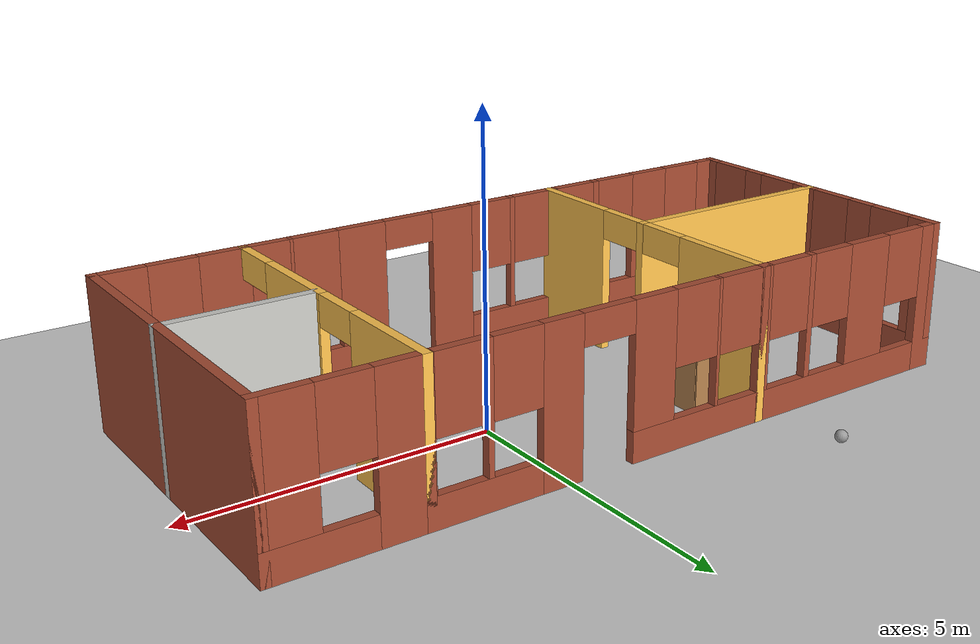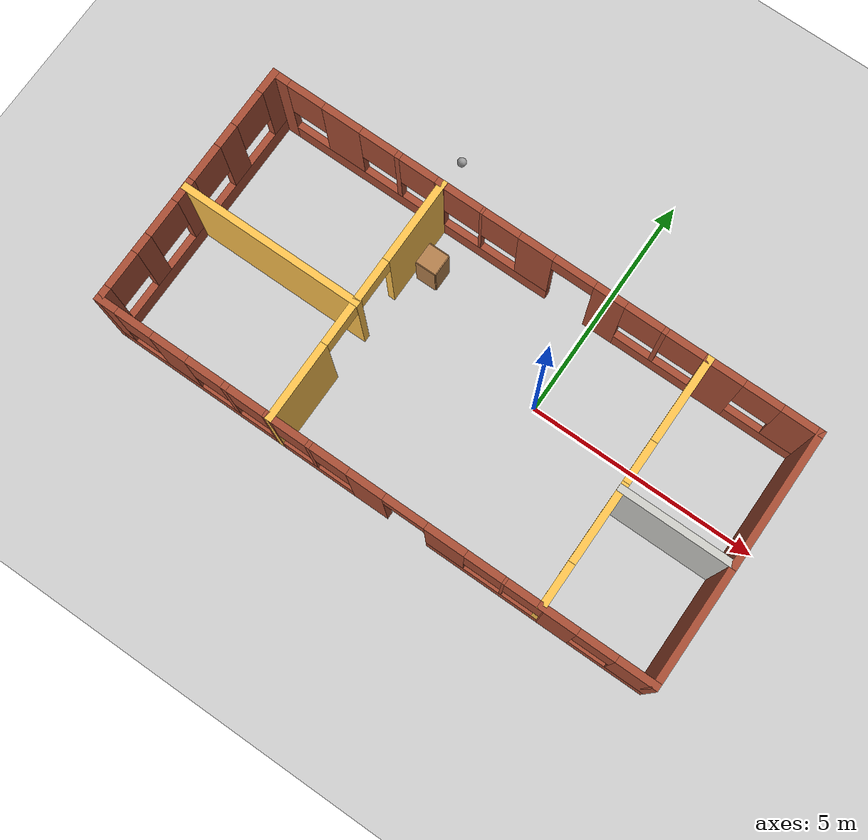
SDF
<sdf version="1.6">
 <world name="default">
  <model name="ground_plane">
   <static>1</static>
   <link name="link">
    <collision name="collision">
     <geometry><plane><normal>0 0 1</normal><size>100 100</size></plane></geometry>
     <surface>
      <contact><collide_bitmask>65535</collide_bitmask></contact>
      <friction><ode><mu>100</mu><mu2>50</mu2></ode></friction>
     </surface>
    </collision>
    <visual name="visual">
     <cast_shadows>0</cast_shadows>
     <geometry><plane><normal>0 0 1</normal><size>100 100</size></plane></geometry>
     <material>
      <script><uri>file://media/materials/scripts/gazebo.material</uri><name>Gazebo/Grey</name></script>
     </material>
    </visual>
   </link>
  </model>
  <model name="building">
   <pose>-1.405 -0.625 0 0 -0 0</pose>
   <link name="Wall_0">
    <pose>-2.175 0 0 0 -0 1.5708</pose>
    <visual name="Wall_0_Visual_0">
     <pose>-1.89234 0 1.25 0 -0 0</pose>
     <geometry><box><size>1.71533 0.15 2.5</size></box></geometry>
     <material>
      <script><uri>file://media/materials/scripts/gazebo.material</uri><name>Gazebo/Grey</name></script>
      <ambient>1 0.764706 0.305882 1</ambient>
     </material>
     <meta><layer>0</layer></meta>
    </visual>
    <collision name="Wall_0_Collision_0">
     <geometry><box><size>1.71533 0.15 2.5</size></box></geometry>
     <pose>-1.89234 0 1.25 0 -0 0</pose>
    </collision>
    <visual name="Wall_0_Visual_1">
     <pose>-0.075798 0 1.25 0 -0 0</pose>
     <geometry><box><size>0.117747 0.15 2.5</size></box></geometry>
     <material>
      <script><uri>file://media/materials/scripts/gazebo.material</uri><name>Gazebo/Grey</name></script>
      <ambient>1 0.764706 0.305882 1</ambient>
     </material>
     <meta><layer>0</layer></meta>
    </visual>
    <collision name="Wall_0_Collision_1">
     <geometry><box><size>0.117747 0.15 2.5</size></box></geometry>
     <pose>-0.075798 0 1.25 0 -0 0</pose>
    </collision>
    <visual name="Wall_0_Visual_2">
     <pose>1.81654 0 1.25 0 -0 0</pose>
     <geometry><box><size>1.86692 0.15 2.5</size></box></geometry>
     <material>
      <script><uri>file://media/materials/scripts/gazebo.material</uri><name>Gazebo/Grey</name></script>
      <ambient>1 0.764706 0.305882 1</ambient>
     </material>
     <meta><layer>0</layer></meta>
    </visual>
    <collision name="Wall_0_Collision_2">
     <geometry><box><size>1.86692 0.15 2.5</size></box></geometry>
     <pose>1.81654 0 1.25 0 -0 0</pose>
    </collision>
    <visual name="Wall_0_Visual_3">
     <pose>-0.584671 0 2.25 0 -0 0</pose>
     <geometry><box><size>0.9 0.15 0.5</size></box></geometry>
     <material>
      <script><uri>file://media/materials/scripts/gazebo.material</uri><name>Gazebo/Grey</name></script>
      <ambient>1 0.764706 0.305882 1</ambient>
     </material>
     <meta><layer>0</layer></meta>
    </visual>
    <collision name="Wall_0_Collision_3">
     <geometry><box><size>0.9 0.15 0.5</size></box></geometry>
     <pose>-0.584671 0 2.25 0 -0 0</pose>
    </collision>
    <visual name="Wall_0_Visual_4">
     <pose>0.433076 0 2.25 0 -0 0</pose>
     <geometry><box><size>0.9 0.15 0.5</size></box></geometry>
     <material>
      <script><uri>file://media/materials/scripts/gazebo.material</uri><name>Gazebo/Grey</name></script>
      <ambient>1 0.764706 0.305882 1</ambient>
     </material>
     <meta><layer>0</layer></meta>
    </visual>
    <collision name="Wall_0_Collision_4">
     <geometry><box><size>0.9 0.15 0.5</size></box></geometry>
     <pose>0.433076 0 2.25 0 -0 0</pose>
    </collision>
   </link>
   <link name="Wall_1">
    <pose>0.75 2.675 0 0 -0 0</pose>
    <visual name="Wall_1_Visual_0">
     <pose>-2.92093 0 1.25 0 -0 0</pose>
     <geometry><box><size>0.158131 0.15 2.5</size></box></geometry>
     <material>
      <script><uri>file://media/materials/scripts/gazebo.material</uri><name>Gazebo/Bricks</name></script>
      <ambient>1 1 1 1</ambient>
     </material>
     <meta><layer>0</layer></meta>
    </visual>
    <collision name="Wall_1_Collision_0">
     <geometry><box><size>0.158131 0.15 2.5</size></box></geometry>
     <pose>-2.92093 0 1.25 0 -0 0</pose>
    </collision>
    <visual name="Wall_1_Visual_1">
     <pose>0.810048 0 1.25 0 -0 0</pose>
     <geometry><box><size>0.671635 0.15 2.5</size></box></geometry>
     <material>
      <script><uri>file://media/materials/scripts/gazebo.material</uri><name>Gazebo/Bricks</name></script>
      <ambient>1 1 1 1</ambient>
     </material>
     <meta><layer>0</layer></meta>
    </visual>
    <collision name="Wall_1_Collision_1">
     <geometry><box><size>0.671635 0.15 2.5</size></box></geometry>
     <pose>0.810048 0 1.25 0 -0 0</pose>
    </collision>
    <visual name="Wall_1_Visual_2">
     <pose>-1.63382 0 0.25 0 -0 0</pose>
     <geometry><box><size>2.4161 0.15 0.5</size></box></geometry>
     <material>
      <script><uri>file://media/materials/scripts/gazebo.material</uri><name>Gazebo/Bricks</name></script>
      <ambient>1 1 1 1</ambient>
     </material>
     <meta><layer>0</layer></meta>
    </visual>
    <collision name="Wall_1_Collision_2">
     <geometry><box><size>2.4161 0.15 0.5</size></box></geometry>
     <pose>-1.63382 0 0.25 0 -0 0</pose>
    </collision>
    <visual name="Wall_1_Visual_3">
     <pose>2.07293 0 0.25 0 -0 0</pose>
     <geometry><box><size>1.85413 0.15 0.5</size></box></geometry>
     <material>
      <script><uri>file://media/materials/scripts/gazebo.material</uri><name>Gazebo/Bricks</name></script>
      <ambient>1 1 1 1</ambient>
     </material>
     <meta><layer>0</layer></meta>
    </visual>
    <collision name="Wall_1_Collision_3">
     <geometry><box><size>1.85413 0.15 0.5</size></box></geometry>
     <pose>2.07293 0 0.25 0 -0 0</pose>
    </collision>
    <visual name="Wall_1_Visual_4">
     <pose>-2.01336 0 1.5 0 -0 0</pose>
     <geometry><box><size>0.057013 0.15 2</size></box></geometry>
     <material>
      <script><uri>file://media/materials/scripts/gazebo.material</uri><name>Gazebo/Bricks</name></script>
      <ambient>1 1 1 1</ambient>
     </material>
     <meta><layer>0</layer></meta>
    </visual>
    <collision name="Wall_1_Collision_4">
     <geometry><box><size>0.057013 0.15 2</size></box></geometry>
     <pose>-2.01336 0 1.5 0 -0 0</pose>
    </collision>
    <visual name="Wall_1_Visual_5">
     <pose>-0.805313 0 1.5 0 -0 0</pose>
     <geometry><box><size>0.759086 0.15 2</size></box></geometry>
     <material>
      <script><uri>file://media/materials/scripts/gazebo.material</uri><name>Gazebo/Bricks</name></script>
      <ambient>1 1 1 1</ambient>
     </material>
     <meta><layer>0</layer></meta>
    </visual>
    <collision name="Wall_1_Collision_5">
     <geometry><box><size>0.759086 0.15 2</size></box></geometry>
     <pose>-0.805313 0 1.5 0 -0 0</pose>
    </collision>
    <visual name="Wall_1_Visual_6">
     <pose>-0.805313 0 1.5 0 -0 0</pose>
     <geometry><box><size>0.759086 0.15 2</size></box></geometry>
     <material>
      <script><uri>file://media/materials/scripts/gazebo.material</uri><name>Gazebo/Bricks</name></script>
      <ambient>1 1 1 1</ambient>
     </material>
     <meta><layer>0</layer></meta>
    </visual>
    <collision name="Wall_1_Collision_6">
     <geometry><box><size>0.759086 0.15 2</size></box></geometry>
     <pose>-0.805313 0 1.5 0 -0 0</pose>
    </collision>
    <visual name="Wall_1_Visual_7">
     <pose>1.99186 0 1.5 0 -0 0</pose>
     <geometry><box><size>0.091993 0.15 2</size></box></geometry>
     <material>
      <script><uri>file://media/materials/scripts/gazebo.material</uri><name>Gazebo/Bricks</name></script>
      <ambient>1 1 1 1</ambient>
     </material>
     <meta><layer>0</layer></meta>
    </visual>
    <collision name="Wall_1_Collision_7">
     <geometry><box><size>0.091993 0.15 2</size></box></geometry>
     <pose>1.99186 0 1.5 0 -0 0</pose>
    </collision>
    <visual name="Wall_1_Visual_8">
     <pose>2.91893 0 1.5 0 -0 0</pose>
     <geometry><box><size>0.162141 0.15 2</size></box></geometry>
     <material>
      <script><uri>file://media/materials/scripts/gazebo.material</uri><name>Gazebo/Bricks</name></script>
      <ambient>1 1 1 1</ambient>
     </material>
     <meta><layer>0</layer></meta>
    </visual>
    <collision name="Wall_1_Collision_8">
     <geometry><box><size>0.162141 0.15 2</size></box></geometry>
     <pose>2.91893 0 1.5 0 -0 0</pose>
    </collision>
    <visual name="Wall_1_Visual_9">
     <pose>-2.44187 0 1.9 0 -0 0</pose>
     <geometry><box><size>0.8 0.15 1.2</size></box></geometry>
     <material>
      <script><uri>file://media/materials/scripts/gazebo.material</uri><name>Gazebo/Bricks</name></script>
      <ambient>1 1 1 1</ambient>
     </material>
     <meta><layer>0</layer></meta>
    </visual>
    <collision name="Wall_1_Collision_9">
     <geometry><box><size>0.8 0.15 1.2</size></box></geometry>
     <pose>-2.44187 0 1.9 0 -0 0</pose>
    </collision>
    <visual name="Wall_1_Visual_10">
     <pose>1.54587 0 1.9 0 -0 0</pose>
     <geometry><box><size>0.8 0.15 1.2</size></box></geometry>
     <material>
      <script><uri>file://media/materials/scripts/gazebo.material</uri><name>Gazebo/Bricks</name></script>
      <ambient>1 1 1 1</ambient>
     </material>
     <meta><layer>0</layer></meta>
    </visual>
    <collision name="Wall_1_Collision_10">
     <geometry><box><size>0.8 0.15 1.2</size></box></geometry>
     <pose>1.54587 0 1.9 0 -0 0</pose>
    </collision>
    <visual name="Wall_1_Visual_11">
     <pose>-1.58486 0 1.9 0 -0 0</pose>
     <geometry><box><size>0.8 0.15 1.2</size></box></geometry>
     <material>
      <script><uri>file://media/materials/scripts/gazebo.material</uri><name>Gazebo/Bricks</name></script>
      <ambient>1 1 1 1</ambient>
     </material>
     <meta><layer>0</layer></meta>
    </visual>
    <collision name="Wall_1_Collision_11">
     <geometry><box><size>0.8 0.15 1.2</size></box></geometry>
     <pose>-1.58486 0 1.9 0 -0 0</pose>
    </collision>
    <visual name="Wall_1_Visual_12">
     <pose>2.43786 0 1.9 0 -0 0</pose>
     <geometry><box><size>0.8 0.15 1.2</size></box></geometry>
     <material>
      <script><uri>file://media/materials/scripts/gazebo.material</uri><name>Gazebo/Bricks</name></script>
      <ambient>1 1 1 1</ambient>
     </material>
     <meta><layer>0</layer></meta>
    </visual>
    <collision name="Wall_1_Collision_12">
     <geometry><box><size>0.8 0.15 1.2</size></box></geometry>
     <pose>2.43786 0 1.9 0 -0 0</pose>
    </collision>
    <visual name="Wall_1_Visual_13">
     <pose>0.02423 0 2.25 0 -0 0</pose>
     <geometry><box><size>0.9 0.15 0.5</size></box></geometry>
     <material>
      <script><uri>file://media/materials/scripts/gazebo.material</uri><name>Gazebo/Bricks</name></script>
      <ambient>1 1 1 1</ambient>
     </material>
     <meta><layer>0</layer></meta>
    </visual>
    <collision name="Wall_1_Collision_13">
     <geometry><box><size>0.9 0.15 0.5</size></box></geometry>
     <pose>0.02423 0 2.25 0 -0 0</pose>
    </collision>
    <visual name="Wall_1_Visual_14">
     <pose>0.02423 0 2.25 0 -0 0</pose>
     <geometry><box><size>0.9 0.15 0.5</size></box></geometry>
     <material>
      <script><uri>file://media/materials/scripts/gazebo.material</uri><name>Gazebo/Bricks</name></script>
      <ambient>1 1 1 1</ambient>
     </material>
     <meta><layer>0</layer></meta>
    </visual>
    <collision name="Wall_1_Collision_14">
     <geometry><box><size>0.9 0.15 0.5</size></box></geometry>
     <pose>0.02423 0 2.25 0 -0 0</pose>
    </collision>
   </link>
   <link name="Wall_10">
    <collision name="Wall_10_Collision">
     <geometry><box><size>2.65 0.15 2.5</size></box></geometry>
     <pose>0 0 1.25 0 -0 0</pose>
    </collision>
    <visual name="Wall_10_Visual">
     <pose>0 0 1.25 0 -0 0</pose>
     <geometry><box><size>2.65 0.15 2.5</size></box></geometry>
     <material>
      <script><uri>file://media/materials/scripts/gazebo.material</uri><name>Gazebo/Bricks</name></script>
      <ambient>1 1 1 1</ambient>
     </material>
     <meta><layer>0</layer></meta>
    </visual>
    <pose>6.025 -1.425 0 0 -0 1.5708</pose>
   </link>
   <link name="Wall_12">
    <pose>-4.1 -2.675 0 0 -0 3.14159</pose>
    <visual name="Wall_12_Visual_0">
     <pose>-1.89685 0 1.25 0 -0 0</pose>
     <geometry><box><size>0.206292 0.15 2.5</size></box></geometry>
     <material>
      <script><uri>file://media/materials/scripts/gazebo.material</uri><name>Gazebo/Bricks</name></script>
      <ambient>1 1 1 1</ambient>
     </material>
     <meta><layer>0</layer></meta>
    </visual>
    <collision name="Wall_12_Collision_0">
     <geometry><box><size>0.206292 0.15 2.5</size></box></geometry>
     <pose>-1.89685 0 1.25 0 -0 0</pose>
    </collision>
    <visual name="Wall_12_Visual_1">
     <pose>0.103146 0 0.25 0 -0 0</pose>
     <geometry><box><size>3.79371 0.15 0.5</size></box></geometry>
     <material>
      <script><uri>file://media/materials/scripts/gazebo.material</uri><name>Gazebo/Bricks</name></script>
      <ambient>1 1 1 1</ambient>
     </material>
     <meta><layer>0</layer></meta>
    </visual>
    <collision name="Wall_12_Collision_1">
     <geometry><box><size>3.79371 0.15 0.5</size></box></geometry>
     <pose>0.103146 0 0.25 0 -0 0</pose>
    </collision>
    <visual name="Wall_12_Visual_2">
     <pose>-0.930221 0 1.5 0 -0 0</pose>
     <geometry><box><size>0.126973 0.15 2</size></box></geometry>
     <material>
      <script><uri>file://media/materials/scripts/gazebo.material</uri><name>Gazebo/Bricks</name></script>
      <ambient>1 1 1 1</ambient>
     </material>
     <meta><layer>0</layer></meta>
    </visual>
    <collision name="Wall_12_Collision_2">
     <geometry><box><size>0.126973 0.15 2</size></box></geometry>
     <pose>-0.930221 0 1.5 0 -0 0</pose>
    </collision>
    <visual name="Wall_12_Visual_3">
     <pose>0.329063 0 1.5 0 -0 0</pose>
     <geometry><box><size>0.791596 0.15 2</size></box></geometry>
     <material>
      <script><uri>file://media/materials/scripts/gazebo.material</uri><name>Gazebo/Bricks</name></script>
      <ambient>1 1 1 1</ambient>
     </material>
     <meta><layer>0</layer></meta>
    </visual>
    <collision name="Wall_12_Collision_3">
     <geometry><box><size>0.791596 0.15 2</size></box></geometry>
     <pose>0.329063 0 1.5 0 -0 0</pose>
    </collision>
    <visual name="Wall_12_Visual_4">
     <pose>1.76243 0 1.5 0 -0 0</pose>
     <geometry><box><size>0.475139 0.15 2</size></box></geometry>
     <material>
      <script><uri>file://media/materials/scripts/gazebo.material</uri><name>Gazebo/Bricks</name></script>
      <ambient>1 1 1 1</ambient>
     </material>
     <meta><layer>0</layer></meta>
    </visual>
    <collision name="Wall_12_Collision_4">
     <geometry><box><size>0.475139 0.15 2</size></box></geometry>
     <pose>1.76243 0 1.5 0 -0 0</pose>
    </collision>
    <visual name="Wall_12_Visual_5">
     <pose>-1.39371 0 1.9 0 -0 0</pose>
     <geometry><box><size>0.8 0.15 1.2</size></box></geometry>
     <material>
      <script><uri>file://media/materials/scripts/gazebo.material</uri><name>Gazebo/Bricks</name></script>
      <ambient>1 1 1 1</ambient>
     </material>
     <meta><layer>0</layer></meta>
    </visual>
    <collision name="Wall_12_Collision_5">
     <geometry><box><size>0.8 0.15 1.2</size></box></geometry>
     <pose>-1.39371 0 1.9 0 -0 0</pose>
    </collision>
    <visual name="Wall_12_Visual_6">
     <pose>-0.466734 0 1.9 0 -0 0</pose>
     <geometry><box><size>0.8 0.15 1.2</size></box></geometry>
     <material>
      <script><uri>file://media/materials/scripts/gazebo.material</uri><name>Gazebo/Bricks</name></script>
      <ambient>1 1 1 1</ambient>
     </material>
     <meta><layer>0</layer></meta>
    </visual>
    <collision name="Wall_12_Collision_6">
     <geometry><box><size>0.8 0.15 1.2</size></box></geometry>
     <pose>-0.466734 0 1.9 0 -0 0</pose>
    </collision>
    <visual name="Wall_12_Visual_7">
     <pose>1.12486 0 1.9 0 -0 0</pose>
     <geometry><box><size>0.8 0.15 1.2</size></box></geometry>
     <material>
      <script><uri>file://media/materials/scripts/gazebo.material</uri><name>Gazebo/Bricks</name></script>
      <ambient>1 1 1 1</ambient>
     </material>
     <meta><layer>0</layer></meta>
    </visual>
    <collision name="Wall_12_Collision_7">
     <geometry><box><size>0.8 0.15 1.2</size></box></geometry>
     <pose>1.12486 0 1.9 0 -0 0</pose>
    </collision>
   </link>
   <link name="Wall_13">
    <pose>-6.025 0 0 0 -0 1.5708</pose>
    <visual name="Wall_13_Visual_0">
     <pose>-2.58228 0 1.25 0 -0 0</pose>
     <geometry><box><size>0.335448 0.15 2.5</size></box></geometry>
     <material>
      <script><uri>file://media/materials/scripts/gazebo.material</uri><name>Gazebo/Bricks</name></script>
      <ambient>1 1 1 1</ambient>
     </material>
     <meta><layer>0</layer></meta>
    </visual>
    <collision name="Wall_13_Collision_0">
     <geometry><box><size>0.335448 0.15 2.5</size></box></geometry>
     <pose>-2.58228 0 1.25 0 -0 0</pose>
    </collision>
    <visual name="Wall_13_Visual_1">
     <pose>0.167724 0 0.25 0 -0 0</pose>
     <geometry><box><size>5.16455 0.15 0.5</size></box></geometry>
     <material>
      <script><uri>file://media/materials/scripts/gazebo.material</uri><name>Gazebo/Bricks</name></script>
      <ambient>1 1 1 1</ambient>
     </material>
     <meta><layer>0</layer></meta>
    </visual>
    <collision name="Wall_13_Collision_1">
     <geometry><box><size>5.16455 0.15 0.5</size></box></geometry>
     <pose>0.167724 0 0.25 0 -0 0</pose>
    </collision>
    <visual name="Wall_13_Visual_2">
     <pose>-1.41115 0 1.5 0 -0 0</pose>
     <geometry><box><size>0.406814 0.15 2</size></box></geometry>
     <material>
      <script><uri>file://media/materials/scripts/gazebo.material</uri><name>Gazebo/Bricks</name></script>
      <ambient>1 1 1 1</ambient>
     </material>
     <meta><layer>0</layer></meta>
    </visual>
    <collision name="Wall_13_Collision_2">
     <geometry><box><size>0.406814 0.15 2</size></box></geometry>
     <pose>-1.41115 0 1.5 0 -0 0</pose>
    </collision>
    <visual name="Wall_13_Visual_3">
     <pose>-0.15186 0 1.5 0 -0 0</pose>
     <geometry><box><size>0.511755 0.15 2</size></box></geometry>
     <material>
      <script><uri>file://media/materials/scripts/gazebo.material</uri><name>Gazebo/Bricks</name></script>
      <ambient>1 1 1 1</ambient>
     </material>
     <meta><layer>0</layer></meta>
    </visual>
    <collision name="Wall_13_Collision_3">
     <geometry><box><size>0.511755 0.15 2</size></box></geometry>
     <pose>-0.15186 0 1.5 0 -0 0</pose>
    </collision>
    <visual name="Wall_13_Visual_4">
     <pose>1.15989 0 1.5 0 -0 0</pose>
     <geometry><box><size>0.511755 0.15 2</size></box></geometry>
     <material>
      <script><uri>file://media/materials/scripts/gazebo.material</uri><name>Gazebo/Bricks</name></script>
      <ambient>1 1 1 1</ambient>
     </material>
     <meta><layer>0</layer></meta>
    </visual>
    <collision name="Wall_13_Collision_4">
     <geometry><box><size>0.511755 0.15 2</size></box></geometry>
     <pose>1.15989 0 1.5 0 -0 0</pose>
    </collision>
    <visual name="Wall_13_Visual_5">
     <pose>2.48289 0 1.5 0 -0 0</pose>
     <geometry><box><size>0.534228 0.15 2</size></box></geometry>
     <material>
      <script><uri>file://media/materials/scripts/gazebo.material</uri><name>Gazebo/Bricks</name></script>
      <ambient>1 1 1 1</ambient>
     </material>
     <meta><layer>0</layer></meta>
    </visual>
    <collision name="Wall_13_Collision_5">
     <geometry><box><size>0.534228 0.15 2</size></box></geometry>
     <pose>2.48289 0 1.5 0 -0 0</pose>
    </collision>
    <visual name="Wall_13_Visual_6">
     <pose>-2.01455 0 1.9 0 -0 0</pose>
     <geometry><box><size>0.8 0.15 1.2</size></box></geometry>
     <material>
      <script><uri>file://media/materials/scripts/gazebo.material</uri><name>Gazebo/Bricks</name></script>
      <ambient>1 1 1 1</ambient>
     </material>
     <meta><layer>0</layer></meta>
    </visual>
    <collision name="Wall_13_Collision_6">
     <geometry><box><size>0.8 0.15 1.2</size></box></geometry>
     <pose>-2.01455 0 1.9 0 -0 0</pose>
    </collision>
    <visual name="Wall_13_Visual_7">
     <pose>-0.807738 0 1.9 0 -0 0</pose>
     <geometry><box><size>0.8 0.15 1.2</size></box></geometry>
     <material>
      <script><uri>file://media/materials/scripts/gazebo.material</uri><name>Gazebo/Bricks</name></script>
      <ambient>1 1 1 1</ambient>
     </material>
     <meta><layer>0</layer></meta>
    </visual>
    <collision name="Wall_13_Collision_7">
     <geometry><box><size>0.8 0.15 1.2</size></box></geometry>
     <pose>-0.807738 0 1.9 0 -0 0</pose>
    </collision>
    <visual name="Wall_13_Visual_8">
     <pose>0.504017 0 1.9 0 -0 0</pose>
     <geometry><box><size>0.8 0.15 1.2</size></box></geometry>
     <material>
      <script><uri>file://media/materials/scripts/gazebo.material</uri><name>Gazebo/Bricks</name></script>
      <ambient>1 1 1 1</ambient>
     </material>
     <meta><layer>0</layer></meta>
    </visual>
    <collision name="Wall_13_Collision_8">
     <geometry><box><size>0.8 0.15 1.2</size></box></geometry>
     <pose>0.504017 0 1.9 0 -0 0</pose>
    </collision>
    <visual name="Wall_13_Visual_9">
     <pose>1.81577 0 1.9 0 -0 0</pose>
     <geometry><box><size>0.8 0.15 1.2</size></box></geometry>
     <material>
      <script><uri>file://media/materials/scripts/gazebo.material</uri><name>Gazebo/Bricks</name></script>
      <ambient>1 1 1 1</ambient>
     </material>
     <meta><layer>0</layer></meta>
    </visual>
    <collision name="Wall_13_Collision_9">
     <geometry><box><size>0.8 0.15 1.2</size></box></geometry>
     <pose>1.81577 0 1.9 0 -0 0</pose>
    </collision>
   </link>
   <link name="Wall_14">
    <pose>-4.1 2.675 0 0 -0 0</pose>
    <visual name="Wall_14_Visual_0">
     <pose>-1.78867 0 1.25 0 -0 0</pose>
     <geometry><box><size>0.422669 0.15 2.5</size></box></geometry>
     <material>
      <script><uri>file://media/materials/scripts/gazebo.material</uri><name>Gazebo/Bricks</name></script>
      <ambient>1 1 1 1</ambient>
     </material>
     <meta><layer>0</layer></meta>
    </visual>
    <collision name="Wall_14_Collision_0">
     <geometry><box><size>0.422669 0.15 2.5</size></box></geometry>
     <pose>-1.78867 0 1.25 0 -0 0</pose>
    </collision>
    <visual name="Wall_14_Visual_1">
     <pose>0.211334 0 0.25 0 -0 0</pose>
     <geometry><box><size>3.57733 0.15 0.5</size></box></geometry>
     <material>
      <script><uri>file://media/materials/scripts/gazebo.material</uri><name>Gazebo/Bricks</name></script>
      <ambient>1 1 1 1</ambient>
     </material>
     <meta><layer>0</layer></meta>
    </visual>
    <collision name="Wall_14_Collision_1">
     <geometry><box><size>3.57733 0.15 0.5</size></box></geometry>
     <pose>0.211334 0 0.25 0 -0 0</pose>
    </collision>
    <visual name="Wall_14_Visual_2">
     <pose>-0.346553 0 1.5 0 -0 0</pose>
     <geometry><box><size>0.861556 0.15 2</size></box></geometry>
     <material>
      <script><uri>file://media/materials/scripts/gazebo.material</uri><name>Gazebo/Bricks</name></script>
      <ambient>1 1 1 1</ambient>
     </material>
     <meta><layer>0</layer></meta>
    </visual>
    <collision name="Wall_14_Collision_2">
     <geometry><box><size>0.861556 0.15 2</size></box></geometry>
     <pose>-0.346553 0 1.5 0 -0 0</pose>
    </collision>
    <visual name="Wall_14_Visual_3">
     <pose>0.938966 0 1.5 0 -0 0</pose>
     <geometry><box><size>0.109483 0.15 2</size></box></geometry>
     <material>
      <script><uri>file://media/materials/scripts/gazebo.material</uri><name>Gazebo/Bricks</name></script>
      <ambient>1 1 1 1</ambient>
     </material>
     <meta><layer>0</layer></meta>
    </visual>
    <collision name="Wall_14_Collision_3">
     <geometry><box><size>0.109483 0.15 2</size></box></geometry>
     <pose>0.938966 0 1.5 0 -0 0</pose>
    </collision>
    <visual name="Wall_14_Visual_4">
     <pose>1.89685 0 1.5 0 -0 0</pose>
     <geometry><box><size>0.206292 0.15 2</size></box></geometry>
     <material>
      <script><uri>file://media/materials/scripts/gazebo.material</uri><name>Gazebo/Bricks</name></script>
      <ambient>1 1 1 1</ambient>
     </material>
     <meta><layer>0</layer></meta>
    </visual>
    <collision name="Wall_14_Collision_4">
     <geometry><box><size>0.206292 0.15 2</size></box></geometry>
     <pose>1.89685 0 1.5 0 -0 0</pose>
    </collision>
    <visual name="Wall_14_Visual_5">
     <pose>-1.17733 0 1.9 0 -0 0</pose>
     <geometry><box><size>0.8 0.15 1.2</size></box></geometry>
     <material>
      <script><uri>file://media/materials/scripts/gazebo.material</uri><name>Gazebo/Bricks</name></script>
      <ambient>1 1 1 1</ambient>
     </material>
     <meta><layer>0</layer></meta>
    </visual>
    <collision name="Wall_14_Collision_5">
     <geometry><box><size>0.8 0.15 1.2</size></box></geometry>
     <pose>-1.17733 0 1.9 0 -0 0</pose>
    </collision>
    <visual name="Wall_14_Visual_6">
     <pose>0.484225 0 1.9 0 -0 0</pose>
     <geometry><box><size>0.8 0.15 1.2</size></box></geometry>
     <material>
      <script><uri>file://media/materials/scripts/gazebo.material</uri><name>Gazebo/Bricks</name></script>
      <ambient>1 1 1 1</ambient>
     </material>
     <meta><layer>0</layer></meta>
    </visual>
    <collision name="Wall_14_Collision_6">
     <geometry><box><size>0.8 0.15 1.2</size></box></geometry>
     <pose>0.484225 0 1.9 0 -0 0</pose>
    </collision>
    <visual name="Wall_14_Visual_7">
     <pose>1.39371 0 1.9 0 -0 0</pose>
     <geometry><box><size>0.8 0.15 1.2</size></box></geometry>
     <material>
      <script><uri>file://media/materials/scripts/gazebo.material</uri><name>Gazebo/Bricks</name></script>
      <ambient>1 1 1 1</ambient>
     </material>
     <meta><layer>0</layer></meta>
    </visual>
    <collision name="Wall_14_Collision_7">
     <geometry><box><size>0.8 0.15 1.2</size></box></geometry>
     <pose>1.39371 0 1.9 0 -0 0</pose>
    </collision>
   </link>
   <link name="Wall_17">
    <collision name="Wall_17_Collision">
     <geometry><box><size>4 0.15 2.5</size></box></geometry>
     <pose>0 0 1.25 0 -0 0</pose>
    </collision>
    <visual name="Wall_17_Visual">
     <pose>0 0 1.25 0 -0 0</pose>
     <geometry><box><size>4 0.15 2.5</size></box></geometry>
     <material>
      <script><uri>file://media/materials/scripts/gazebo.material</uri><name>Gazebo/Grey</name></script>
      <ambient>1 0.764706 0.305882 1</ambient>
     </material>
     <meta><layer>0</layer></meta>
    </visual>
    <pose>-4.08598 -0.075797 0 0 -0 0</pose>
   </link>
   <link name="Wall_2">
    <pose>3.675 0 0 0 0 -1.5708</pose>
    <visual name="Wall_2_Visual_0">
     <pose>-1.80497 0 1.25 0 -0 0</pose>
     <geometry><box><size>1.89006 0.15 2.5</size></box></geometry>
     <material>
      <script><uri>file://media/materials/scripts/gazebo.material</uri><name>Gazebo/Grey</name></script>
      <ambient>1 0.764706 0.305882 1</ambient>
     </material>
     <meta><layer>0</layer></meta>
    </visual>
    <collision name="Wall_2_Collision_0">
     <geometry><box><size>1.89006 0.15 2.5</size></box></geometry>
     <pose>-1.80497 0 1.25 0 -0 0</pose>
    </collision>
    <visual name="Wall_2_Visual_1">
     <pose>0.896934 0 1.25 0 -0 0</pose>
     <geometry><box><size>1.71376 0.15 2.5</size></box></geometry>
     <material>
      <script><uri>file://media/materials/scripts/gazebo.material</uri><name>Gazebo/Grey</name></script>
      <ambient>1 0.764706 0.305882 1</ambient>
     </material>
     <meta><layer>0</layer></meta>
    </visual>
    <collision name="Wall_2_Collision_1">
     <geometry><box><size>1.71376 0.15 2.5</size></box></geometry>
     <pose>0.896934 0 1.25 0 -0 0</pose>
    </collision>
    <visual name="Wall_2_Visual_2">
     <pose>2.70191 0 1.25 0 -0 0</pose>
     <geometry><box><size>0.096187 0.15 2.5</size></box></geometry>
     <material>
      <script><uri>file://media/materials/scripts/gazebo.material</uri><name>Gazebo/Grey</name></script>
      <ambient>1 0.764706 0.305882 1</ambient>
     </material>
     <meta><layer>0</layer></meta>
    </visual>
    <collision name="Wall_2_Collision_2">
     <geometry><box><size>0.096187 0.15 2.5</size></box></geometry>
     <pose>2.70191 0 1.25 0 -0 0</pose>
    </collision>
    <visual name="Wall_2_Visual_3">
     <pose>-0.409945 0 2.25 0 -0 0</pose>
     <geometry><box><size>0.9 0.15 0.5</size></box></geometry>
     <material>
      <script><uri>file://media/materials/scripts/gazebo.material</uri><name>Gazebo/Grey</name></script>
      <ambient>1 0.764706 0.305882 1</ambient>
     </material>
     <meta><layer>0</layer></meta>
    </visual>
    <collision name="Wall_2_Collision_3">
     <geometry><box><size>0.9 0.15 0.5</size></box></geometry>
     <pose>-0.409945 0 2.25 0 -0 0</pose>
    </collision>
    <visual name="Wall_2_Visual_4">
     <pose>2.20381 0 2.25 0 -0 0</pose>
     <geometry><box><size>0.9 0.15 0.5</size></box></geometry>
     <material>
      <script><uri>file://media/materials/scripts/gazebo.material</uri><name>Gazebo/Grey</name></script>
      <ambient>1 0.764706 0.305882 1</ambient>
     </material>
     <meta><layer>0</layer></meta>
    </visual>
    <collision name="Wall_2_Collision_4">
     <geometry><box><size>0.9 0.15 0.5</size></box></geometry>
     <pose>2.20381 0 2.25 0 -0 0</pose>
    </collision>
   </link>
   <link name="Wall_3">
    <pose>0.75 -2.675 0 0 -0 3.14159</pose>
    <visual name="Wall_3_Visual_0">
     <pose>-2.98889 0 1.25 0 -0 0</pose>
     <geometry><box><size>0.022221 0.15 2.5</size></box></geometry>
     <material>
      <script><uri>file://media/materials/scripts/gazebo.material</uri><name>Gazebo/Bricks</name></script>
      <ambient>1 0.764706 0.305882 1</ambient>
     </material>
     <meta><layer>0</layer></meta>
    </visual>
    <collision name="Wall_3_Collision_0">
     <geometry><box><size>0.022221 0.15 2.5</size></box></geometry>
     <pose>-2.98889 0 1.25 0 -0 0</pose>
    </collision>
    <visual name="Wall_3_Visual_1">
     <pose>0.826774 0 1.25 0 -0 0</pose>
     <geometry><box><size>0.786123 0.15 2.5</size></box></geometry>
     <material>
      <script><uri>file://media/materials/scripts/gazebo.material</uri><name>Gazebo/Bricks</name></script>
      <ambient>1 0.764706 0.305882 1</ambient>
     </material>
     <meta><layer>0</layer></meta>
    </visual>
    <collision name="Wall_3_Collision_1">
     <geometry><box><size>0.786123 0.15 2.5</size></box></geometry>
     <pose>0.826774 0 1.25 0 -0 0</pose>
    </collision>
    <visual name="Wall_3_Visual_2">
     <pose>-1.72203 0 0.25 0 -0 0</pose>
     <geometry><box><size>2.51149 0.15 0.5</size></box></geometry>
     <material>
      <script><uri>file://media/materials/scripts/gazebo.material</uri><name>Gazebo/Bricks</name></script>
      <ambient>1 0.764706 0.305882 1</ambient>
     </material>
     <meta><layer>0</layer></meta>
    </visual>
    <collision name="Wall_3_Collision_2">
     <geometry><box><size>2.51149 0.15 0.5</size></box></geometry>
     <pose>-1.72203 0 0.25 0 -0 0</pose>
    </collision>
    <visual name="Wall_3_Visual_3">
     <pose>2.10992 0 0.25 0 -0 0</pose>
     <geometry><box><size>1.78016 0.15 0.5</size></box></geometry>
     <material>
      <script><uri>file://media/materials/scripts/gazebo.material</uri><name>Gazebo/Bricks</name></script>
      <ambient>1 0.764706 0.305882 1</ambient>
     </material>
     <meta><layer>0</layer></meta>
    </visual>
    <collision name="Wall_3_Collision_3">
     <geometry><box><size>1.78016 0.15 0.5</size></box></geometry>
     <pose>2.10992 0 0.25 0 -0 0</pose>
    </collision>
    <visual name="Wall_3_Visual_4">
     <pose>-2.14927 0 1.5 0 -0 0</pose>
     <geometry><box><size>0.057013 0.15 2</size></box></geometry>
     <material>
      <script><uri>file://media/materials/scripts/gazebo.material</uri><name>Gazebo/Bricks</name></script>
      <ambient>1 0.764706 0.305882 1</ambient>
     </material>
     <meta><layer>0</layer></meta>
    </visual>
    <collision name="Wall_3_Collision_4">
     <geometry><box><size>0.057013 0.15 2</size></box></geometry>
     <pose>-2.14927 0 1.5 0 -0 0</pose>
    </collision>
    <visual name="Wall_3_Visual_5">
     <pose>-0.893527 0 1.5 0 -0 0</pose>
     <geometry><box><size>0.854479 0.15 2</size></box></geometry>
     <material>
      <script><uri>file://media/materials/scripts/gazebo.material</uri><name>Gazebo/Bricks</name></script>
      <ambient>1 0.764706 0.305882 1</ambient>
     </material>
     <meta><layer>0</layer></meta>
    </visual>
    <collision name="Wall_3_Collision_5">
     <geometry><box><size>0.854479 0.15 2</size></box></geometry>
     <pose>-0.893527 0 1.5 0 -0 0</pose>
    </collision>
    <visual name="Wall_3_Visual_6">
     <pose>-0.893527 0 1.5 0 -0 0</pose>
     <geometry><box><size>0.854479 0.15 2</size></box></geometry>
     <material>
      <script><uri>file://media/materials/scripts/gazebo.material</uri><name>Gazebo/Bricks</name></script>
      <ambient>1 0.764706 0.305882 1</ambient>
     </material>
     <meta><layer>0</layer></meta>
    </visual>
    <collision name="Wall_3_Collision_6">
     <geometry><box><size>0.854479 0.15 2</size></box></geometry>
     <pose>-0.893527 0 1.5 0 -0 0</pose>
    </collision>
    <visual name="Wall_3_Visual_7">
     <pose>2.06583 0 1.5 0 -0 0</pose>
     <geometry><box><size>0.091993 0.15 2</size></box></geometry>
     <material>
      <script><uri>file://media/materials/scripts/gazebo.material</uri><name>Gazebo/Bricks</name></script>
      <ambient>1 0.764706 0.305882 1</ambient>
     </material>
     <meta><layer>0</layer></meta>
    </visual>
    <collision name="Wall_3_Collision_7">
     <geometry><box><size>0.091993 0.15 2</size></box></geometry>
     <pose>2.06583 0 1.5 0 -0 0</pose>
    </collision>
    <visual name="Wall_3_Visual_8">
     <pose>2.95591 0 1.5 0 -0 0</pose>
     <geometry><box><size>0.088171 0.15 2</size></box></geometry>
     <material>
      <script><uri>file://media/materials/scripts/gazebo.material</uri><name>Gazebo/Bricks</name></script>
      <ambient>1 0.764706 0.305882 1</ambient>
     </material>
     <meta><layer>0</layer></meta>
    </visual>
    <collision name="Wall_3_Collision_8">
     <geometry><box><size>0.088171 0.15 2</size></box></geometry>
     <pose>2.95591 0 1.5 0 -0 0</pose>
    </collision>
    <visual name="Wall_3_Visual_9">
     <pose>-2.57778 0 1.9 0 -0 0</pose>
     <geometry><box><size>0.8 0.15 1.2</size></box></geometry>
     <material>
      <script><uri>file://media/materials/scripts/gazebo.material</uri><name>Gazebo/Bricks</name></script>
      <ambient>1 0.764706 0.305882 1</ambient>
     </material>
     <meta><layer>0</layer></meta>
    </visual>
    <collision name="Wall_3_Collision_9">
     <geometry><box><size>0.8 0.15 1.2</size></box></geometry>
     <pose>-2.57778 0 1.9 0 -0 0</pose>
    </collision>
    <visual name="Wall_3_Visual_10">
     <pose>1.61984 0 1.9 0 -0 0</pose>
     <geometry><box><size>0.8 0.15 1.2</size></box></geometry>
     <material>
      <script><uri>file://media/materials/scripts/gazebo.material</uri><name>Gazebo/Bricks</name></script>
      <ambient>1 0.764706 0.305882 1</ambient>
     </material>
     <meta><layer>0</layer></meta>
    </visual>
    <collision name="Wall_3_Collision_10">
     <geometry><box><size>0.8 0.15 1.2</size></box></geometry>
     <pose>1.61984 0 1.9 0 -0 0</pose>
    </collision>
    <visual name="Wall_3_Visual_11">
     <pose>-1.72077 0 1.9 0 -0 0</pose>
     <geometry><box><size>0.8 0.15 1.2</size></box></geometry>
     <material>
      <script><uri>file://media/materials/scripts/gazebo.material</uri><name>Gazebo/Bricks</name></script>
      <ambient>1 0.764706 0.305882 1</ambient>
     </material>
     <meta><layer>0</layer></meta>
    </visual>
    <collision name="Wall_3_Collision_11">
     <geometry><box><size>0.8 0.15 1.2</size></box></geometry>
     <pose>-1.72077 0 1.9 0 -0 0</pose>
    </collision>
    <visual name="Wall_3_Visual_12">
     <pose>2.51183 0 1.9 0 -0 0</pose>
     <geometry><box><size>0.8 0.15 1.2</size></box></geometry>
     <material>
      <script><uri>file://media/materials/scripts/gazebo.material</uri><name>Gazebo/Bricks</name></script>
      <ambient>1 0.764706 0.305882 1</ambient>
     </material>
     <meta><layer>0</layer></meta>
    </visual>
    <collision name="Wall_3_Collision_12">
     <geometry><box><size>0.8 0.15 1.2</size></box></geometry>
     <pose>2.51183 0 1.9 0 -0 0</pose>
    </collision>
    <visual name="Wall_3_Visual_13">
     <pose>-0.016287 0 2.25 0 -0 0</pose>
     <geometry><box><size>0.9 0.15 0.5</size></box></geometry>
     <material>
      <script><uri>file://media/materials/scripts/gazebo.material</uri><name>Gazebo/Bricks</name></script>
      <ambient>1 0.764706 0.305882 1</ambient>
     </material>
     <meta><layer>0</layer></meta>
    </visual>
    <collision name="Wall_3_Collision_13">
     <geometry><box><size>0.9 0.15 0.5</size></box></geometry>
     <pose>-0.016287 0 2.25 0 -0 0</pose>
    </collision>
    <visual name="Wall_3_Visual_14">
     <pose>-0.016287 0 2.25 0 -0 0</pose>
     <geometry><box><size>0.9 0.15 0.5</size></box></geometry>
     <material>
      <script><uri>file://media/materials/scripts/gazebo.material</uri><name>Gazebo/Bricks</name></script>
      <ambient>1 0.764706 0.305882 1</ambient>
     </material>
     <meta><layer>0</layer></meta>
    </visual>
    <collision name="Wall_3_Collision_14">
     <geometry><box><size>0.9 0.15 0.5</size></box></geometry>
     <pose>-0.016287 0 2.25 0 -0 0</pose>
    </collision>
   </link>
   <link name="Wall_5">
    <pose>4.85 2.675 0 0 -0 0</pose>
    <visual name="Wall_5_Visual_0">
     <pose>-0.834038 0 1.25 0 -0 0</pose>
     <geometry><box><size>0.831925 0.15 2.5</size></box></geometry>
     <material>
      <script><uri>file://media/materials/scripts/gazebo.material</uri><name>Gazebo/Bricks</name></script>
      <ambient>1 1 1 1</ambient>
     </material>
     <meta><layer>0</layer></meta>
    </visual>
    <collision name="Wall_5_Collision_0">
     <geometry><box><size>0.831925 0.15 2.5</size></box></geometry>
     <pose>-0.834038 0 1.25 0 -0 0</pose>
    </collision>
    <visual name="Wall_5_Visual_1">
     <pose>0.415962 0 0.25 0 -0 0</pose>
     <geometry><box><size>1.66807 0.15 0.5</size></box></geometry>
     <material>
      <script><uri>file://media/materials/scripts/gazebo.material</uri><name>Gazebo/Bricks</name></script>
      <ambient>1 1 1 1</ambient>
     </material>
     <meta><layer>0</layer></meta>
    </visual>
    <collision name="Wall_5_Collision_1">
     <geometry><box><size>1.66807 0.15 0.5</size></box></geometry>
     <pose>0.415962 0 0.25 0 -0 0</pose>
    </collision>
    <visual name="Wall_5_Visual_2">
     <pose>0.815962 0 1.5 0 -0 0</pose>
     <geometry><box><size>0.868075 0.15 2</size></box></geometry>
     <material>
      <script><uri>file://media/materials/scripts/gazebo.material</uri><name>Gazebo/Bricks</name></script>
      <ambient>1 1 1 1</ambient>
     </material>
     <meta><layer>0</layer></meta>
    </visual>
    <collision name="Wall_5_Collision_2">
     <geometry><box><size>0.868075 0.15 2</size></box></geometry>
     <pose>0.815962 0 1.5 0 -0 0</pose>
    </collision>
    <visual name="Wall_5_Visual_3">
     <pose>-0.018075 0 1.9 0 -0 0</pose>
     <geometry><box><size>0.8 0.15 1.2</size></box></geometry>
     <material>
      <script><uri>file://media/materials/scripts/gazebo.material</uri><name>Gazebo/Bricks</name></script>
      <ambient>1 1 1 1</ambient>
     </material>
     <meta><layer>0</layer></meta>
    </visual>
    <collision name="Wall_5_Collision_3">
     <geometry><box><size>0.8 0.15 1.2</size></box></geometry>
     <pose>-0.018075 0 1.9 0 -0 0</pose>
    </collision>
   </link>
   <link name="Wall_6">
    <collision name="Wall_6_Collision">
     <geometry><box><size>3 0.15 2.5</size></box></geometry>
     <pose>0 0 1.25 0 -0 0</pose>
    </collision>
    <visual name="Wall_6_Visual">
     <pose>0 0 1.25 0 -0 0</pose>
     <geometry><box><size>3 0.15 2.5</size></box></geometry>
     <material>
      <script><uri>file://media/materials/scripts/gazebo.material</uri><name>Gazebo/Bricks</name></script>
      <ambient>1 1 1 1</ambient>
     </material>
     <meta><layer>0</layer></meta>
    </visual>
    <pose>6.025 1.25 0 0 0 -1.5708</pose>
   </link>
   <link name="Wall_7">
    <collision name="Wall_7_Collision">
     <geometry><box><size>2.5 0.15 2.5</size></box></geometry>
     <pose>0 0 1.25 0 -0 0</pose>
    </collision>
    <visual name="Wall_7_Visual">
     <pose>0 0 1.25 0 -0 0</pose>
     <geometry><box><size>2.5 0.15 2.5</size></box></geometry>
     <material>
      <script><uri>file://media/materials/scripts/gazebo.material</uri><name>Gazebo/CeilingTiled</name></script>
      <ambient>1 0.764706 0.305882 1</ambient>
     </material>
     <meta><layer>0</layer></meta>
    </visual>
    <pose>4.85 -0.175 0 0 -0 3.14159</pose>
   </link>
   <link name="Wall_9">
    <pose>4.85 -2.675 0 0 -0 0</pose>
    <visual name="Wall_9_Visual_0">
     <pose>-0.834038 0 1.25 0 -0 0</pose>
     <geometry><box><size>0.831925 0.15 2.5</size></box></geometry>
     <material>
      <script><uri>file://media/materials/scripts/gazebo.material</uri><name>Gazebo/Bricks</name></script>
      <ambient>1 1 1 1</ambient>
     </material>
     <meta><layer>0</layer></meta>
    </visual>
    <collision name="Wall_9_Collision_0">
     <geometry><box><size>0.831925 0.15 2.5</size></box></geometry>
     <pose>-0.834038 0 1.25 0 -0 0</pose>
    </collision>
    <visual name="Wall_9_Visual_1">
     <pose>0.415962 0 0.25 0 -0 0</pose>
     <geometry><box><size>1.66807 0.15 0.5</size></box></geometry>
     <material>
      <script><uri>file://media/materials/scripts/gazebo.material</uri><name>Gazebo/Bricks</name></script>
      <ambient>1 1 1 1</ambient>
     </material>
     <meta><layer>0</layer></meta>
    </visual>
    <collision name="Wall_9_Collision_1">
     <geometry><box><size>1.66807 0.15 0.5</size></box></geometry>
     <pose>0.415962 0 0.25 0 -0 0</pose>
    </collision>
    <visual name="Wall_9_Visual_2">
     <pose>0.815962 0 1.5 0 -0 0</pose>
     <geometry><box><size>0.868075 0.15 2</size></box></geometry>
     <material>
      <script><uri>file://media/materials/scripts/gazebo.material</uri><name>Gazebo/Bricks</name></script>
      <ambient>1 1 1 1</ambient>
     </material>
     <meta><layer>0</layer></meta>
    </visual>
    <collision name="Wall_9_Collision_2">
     <geometry><box><size>0.868075 0.15 2</size></box></geometry>
     <pose>0.815962 0 1.5 0 -0 0</pose>
    </collision>
    <visual name="Wall_9_Visual_3">
     <pose>-0.018075 0 1.9 0 -0 0</pose>
     <geometry><box><size>0.8 0.15 1.2</size></box></geometry>
     <material>
      <script><uri>file://media/materials/scripts/gazebo.material</uri><name>Gazebo/Bricks</name></script>
      <ambient>1 1 1 1</ambient>
     </material>
     <meta><layer>0</layer></meta>
    </visual>
    <collision name="Wall_9_Collision_3">
     <geometry><box><size>0.8 0.15 1.2</size></box></geometry>
     <pose>-0.018075 0 1.9 0 -0 0</pose>
    </collision>
   </link>
   <static>1</static>
  </model>
  <model name="cabinet">
   <static>1</static>
   <link name="cabinet_bottom_plate">
    <inertial>
     <pose>0 0 -1 0 -0 0</pose>
     <inertia><ixx>2.05</ixx><ixy>0</ixy><ixz>0</ixz><iyy>2.05</iyy><iyz>0</iyz><izz>2.05</izz></inertia>
     <mass>25</mass>
    </inertial>
    <collision name="cabinet_bottom_plate_geom">
     <pose>0 0 0.01 0 -0 0</pose>
     <geometry><box><size>0.45 0.45 0.02</size></box></geometry>
    </collision>
    <visual name="cabinet_bottom_plate_geom_visual">
     <pose>0 0 0.01 0 -0 0</pose>
     <geometry><box><size>0.45 0.45 0.02</size></box></geometry>
     <material>
      <script><uri>file://media/materials/scripts/gazebo.material</uri><name>Gazebo/Wood</name></script>
     </material>
    </visual>
    <collision name="cabinet_bottom_plate_geom_cabinet_back_plate">
     <pose>0.235 0 0.51 0 -0 0</pose>
     <geometry><box><size>0.02 0.45 1.02</size></box></geometry>
    </collision>
    <visual name="cabinet_bottom_plate_geom_cabinet_back_plate_visual">
     <pose>0.235 0 0.51 0 -0 0</pose>
     <geometry><box><size>0.02 0.45 1.02</size></box></geometry>
     <material>
      <script><uri>file://media/materials/scripts/gazebo.material</uri><name>Gazebo/Wood</name></script>
     </material>
    </visual>
    <collision name="cabinet_bottom_plate_geom_cabinet_left_plate">
     <pose>0 0.235 0.51 0 -0 0</pose>
     <geometry><box><size>0.45 0.02 1.02</size></box></geometry>
    </collision>
    <visual name="cabinet_bottom_plate_geom_cabinet_left_plate_visual">
     <pose>0 0.235 0.51 0 -0 0</pose>
     <geometry><box><size>0.45 0.02 1.02</size></box></geometry>
     <material>
      <script><uri>file://media/materials/scripts/gazebo.material</uri><name>Gazebo/Wood</name></script>
     </material>
    </visual>
    <collision name="cabinet_bottom_plate_geom_cabinet_middle_plate">
     <pose>0 0 0.51 0 -0 0</pose>
     <geometry><box><size>0.45 0.45 0.02</size></box></geometry>
    </collision>
    <visual name="cabinet_bottom_plate_geom_cabinet_middle_plate_visual">
     <pose>0 0 0.51 0 -0 0</pose>
     <geometry><box><size>0.45 0.45 0.02</size></box></geometry>
     <material>
      <script><uri>file://media/materials/scripts/gazebo.material</uri><name>Gazebo/Wood</name></script>
     </material>
    </visual>
    <collision name="cabinet_bottom_plate_geom_cabinet_right_plate">
     <pose>0 -0.235 0.51 0 -0 0</pose>
     <geometry><box><size>0.45 0.02 1.02</size></box></geometry>
    </collision>
    <visual name="cabinet_bottom_plate_geom_cabinet_right_plate_visual">
     <pose>0 -0.235 0.51 0 -0 0</pose>
     <geometry><box><size>0.45 0.02 1.02</size></box></geometry>
     <material>
      <script><uri>file://media/materials/scripts/gazebo.material</uri><name>Gazebo/Wood</name></script>
     </material>
    </visual>
    <collision name="cabinet_bottom_plate_geom_cabinet_top_plate">
     <pose>0 0 1.01 0 -0 0</pose>
     <geometry><box><size>0.45 0.45 0.02</size></box></geometry>
    </collision>
    <visual name="cabinet_bottom_plate_geom_cabinet_top_plate_visual">
     <pose>0 0 1.01 0 -0 0</pose>
     <geometry><box><size>0.45 0.45 0.02</size></box></geometry>
     <material>
      <script><uri>file://media/materials/scripts/gazebo.material</uri><name>Gazebo/Wood</name></script>
     </material>
    </visual>
   </link>
   <pose>-3.18497 1.12425 0 0 -0 0</pose>
  </model>
  <model name="my_ball">
   <link name="link_0">
    <inertial>
     <mass>1</mass>
     <inertia><ixx>0.1</ixx><ixy>0</ixy><ixz>0</ixz><iyy>0.1</iyy><iyz>0</iyz><izz>0.1</izz></inertia>
    </inertial>
    <visual name="visual">
     <geometry><sphere><radius>0.1</radius></sphere></geometry>
     <material>
      <lighting>1</lighting>
      <script><uri>file://media/materials/scripts/gazebo.material</uri><name>Gazebo/Grey</name></script>
      <shader type="pixel"><normal_map>__default__</normal_map></shader>
      <ambient>1 1 1 1</ambient>
      <diffuse>1 1 1 1</diffuse>
      <specular>1 1 1 1</specular>
      <emissive>1 1 1 1</emissive>
     </material>
    </visual>
    <collision name="collision">
     <geometry><sphere><radius>0.1</radius></sphere></geometry>
     <surface>
      <friction>
       <ode><mu>1</mu><mu2>1</mu2><fdir1>0 0 0</fdir1><slip1>0</slip1><slip2>0</slip2></ode>
       <torsional>
        <coefficient>1</coefficient>
        <patch_radius>0</patch_radius>
        <surface_radius>0</surface_radius>
        <use_patch_radius>1</use_patch_radius>
        <ode><slip>0</slip></ode>
       </torsional>
      </friction>
      <bounce><restitution_coefficient>0</restitution_coefficient><threshold>1e+06</threshold></bounce>
      <contact>
       <collide_without_contact>0</collide_without_contact>
       <collide_without_contact_bitmask>1</collide_without_contact_bitmask>
       <collide_bitmask>1</collide_bitmask>
       <ode>
        <soft_cfm>0</soft_cfm>
        <soft_erp>0.2</soft_erp>
        <kp>1e+13</kp>
        <kd>1</kd>
        <max_vel>0.01</max_vel>
        <min_depth>0</min_depth>
       </ode>
       <bullet>
        <split_impulse>1</split_impulse>
        <split_impulse_penetration_threshold>-0.01</split_impulse_penetration_threshold>
        <soft_cfm>0</soft_cfm>
        <soft_erp>0.2</soft_erp>
        <kp>1e+13</kp>
        <kd>1</kd>
       </bullet>
      </contact>
     </surface>
    </collision>
   </link>
   <static>0</static>
   <pose>-4.04823 3.37238 0.1 0 -0 0</pose>
  </model>
 </world>
</sdf>
